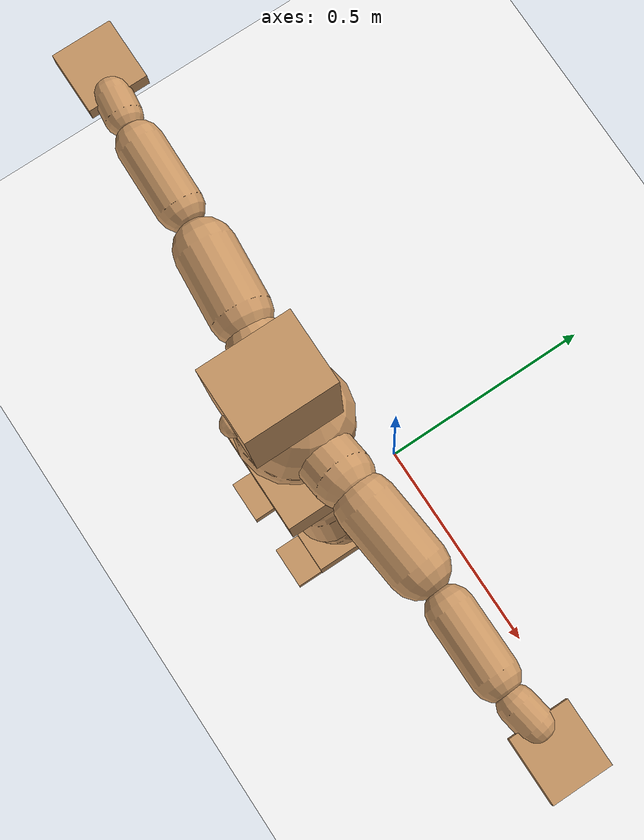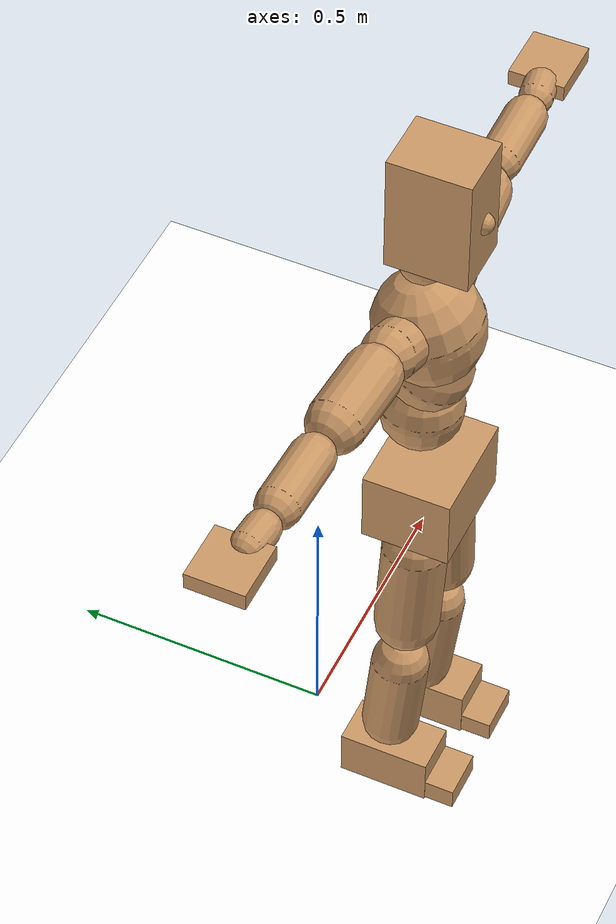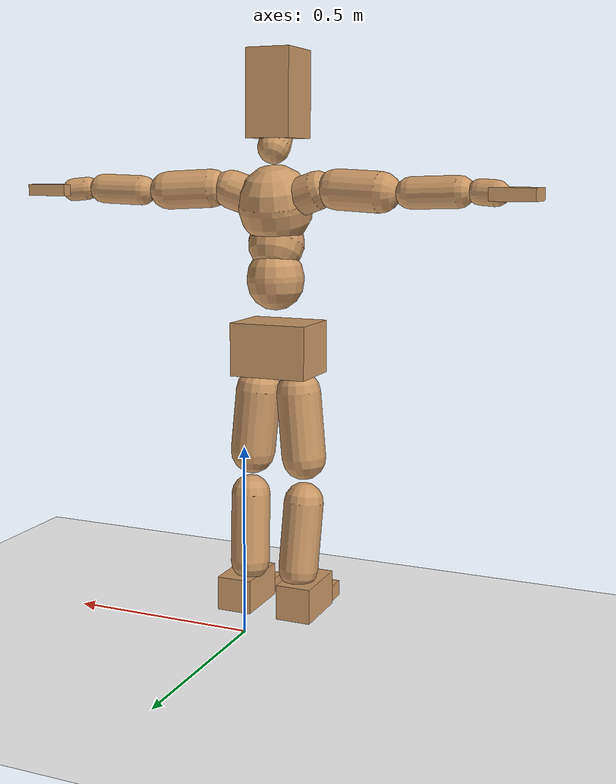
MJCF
<mujoco model="humanoid">
  <option integrator="implicitfast" />

  <visual>
    <global offwidth="1280" offheight="960" />
    <headlight active="1" ambient="0.34 0.34 0.34" diffuse="0.5 0.5 0.5" />
  </visual>

  <default>
    <joint damping="2" stiffness="2" armature="0.01" limited="true" solimplimit="0 .99 .01" />
    <geom condim="1" friction="0.7 0.005 0.0001" solimp=".99 .99 .003" solref="0.015 1" margin="0.001" rgba="0.8 0.6 .4 1" />
    <default class="smplcontact">
      <geom condim="3" friction="1. 0.005 0.0001" solref="0.015 1" solimp="0.98 0.98 0.001" priority="1" />
    </default>
    <default class="stiff_medium">
      <joint stiffness="10" />
    </default>
    <default class="stiff_medium_higher">
      <joint stiffness="50" />
    </default>
    <default class="stiff_high">
      <joint stiffness="100" />
    </default>
  </default>

  <asset>
    <texture type="skybox" builtin="gradient" rgb1="0.99 0.99 0.99" rgb2="0.608 0.828 0.892" width="100" />
    <texture builtin="flat" height="1278" mark="cross" markrgb="1 1 1" name="texgeom" random="0.01" rgb1="0.8 0.6 0.4" rgb2="0.8 0.6 0.4" type="cube" width="127" />
    <texture name="texplane" type="2d" builtin="checker" markrgb="1 1 1" rgb1="0.756 0.772 0.76" rgb2="0.6 0.6 0.6" width="100" height="100" />
    <material name="MatPlane" reflectance="0.5" texture="texplane" texrepeat="1 1" texuniform="true" />
    <material name="geom" texture="texgeom" texuniform="true" />
  </asset>

  <worldbody>
    <light name="tracking_light" pos="0 0 7" dir="0 0 -1" directional="true" cutoff="100" exponent="1" diffuse="1 1 1" specular="0.1 0.1 0.1" mode="trackcom" />
    <camera name="back" pos="0 3 2.4" xyaxes="-1 0 0 0 -1 2" mode="trackcom" />
    <camera name="side" pos="-3 0 2.4" xyaxes="0 -1 0 1 0 2" mode="trackcom" />
    <camera name="front_side" pos="-2.8 -2.8 0.8" xyaxes="0.5 -0.5 0 0.1 0.1 1" mode="trackcom" />
    <geom condim="3" name="floor" pos="0 0 0" rgba="1 1 1 1" size="100 100 .2" type="plane" material="MatPlane" />
    <body name="Pelvis" pos="-0.0018 -0.2233 0.742209" euler="90 0 0">
      <site name="Pelvis" size="0.01" />
      <freejoint name="Pelvis" />
      <geom type="box" pos="-0.0000 -0.0121 -0.0055" size="0.1069 0.0722 0.083" quat="1.0000 0.0000 0.0000 0.0000" density="3165.830099" name="Pelvis" />
      <body name="L_Hip" pos="0.0542934 -0.0714017 -0.00531216">
        <joint name="L_Hip_x" type="hinge" pos="0 0 0" axis="1 0 0" stiffness="6.668919081632653" range="-160.0 22.92" class="stiff_medium" damping="9.005392758035596" armature="0.005404647222188625"/>
        <joint name="L_Hip_y" type="hinge" pos="0 0 0" axis="0 1 0" stiffness="6.7029594897959175" range="-70.0 70.0" class="stiff_medium" damping="6.999485035701093" armature="0.007309128279767539"/>
        <joint name="L_Hip_z" type="hinge" pos="0 0 0" axis="0 0 1" stiffness="6.700045714285715" range="-28.65 90.0" class="stiff_medium" damping="6.015959840364452" armature="0.005401720278372198"/>
        <geom type="capsule" density="2040.816327" fromto="0.00539028 -0.05859 -0.00070308 0.0214049 -0.234516 -0.00281232" size="0.0615" name="L_Hip" />
        <body name="L_Knee" pos="0.0267952 -0.293106 -0.0035154">
          <joint name="L_Knee_x" type="hinge" pos="0 0 0" axis="1 0 0" range="-5.16 171.89" damping="4.994859330859699" armature="0.005679161253517449" stiffness="1.3728160408163266"/>
          <joint name="L_Knee_y" type="hinge" pos="0 0 0" axis="0 1 0" range="-4.58 6.88" damping="5.755474077414816" armature="0.007669894539457125" stiffness="1.3496552040816325"/>
          <joint name="L_Knee_z" type="hinge" pos="0 0 0" axis="0 0 1" range="-6.88 4.58" damping="5.006769984553142" armature="0.0056641260064769616" stiffness="1.3830325306122448"/>
          <geom type="capsule" density="1234.567901" fromto="-0.00210924 -0.0621835 -0.00679644 -0.00851508 -0.248734 -0.027342" size="0.0541" name="L_Knee" />
          <body name="L_Ankle" pos="-0.0106243 -0.310918 -0.0341384">
            <joint name="L_Ankle_x" type="hinge" pos="0 0 0" axis="1 0 0" range="-45.84 45.84" class="stiff_medium" damping="4.573210767116829" armature="0.0074366579588940876" stiffness="7.8119980612244895"/>
            <joint name="L_Ankle_y" type="hinge" pos="0 0 0" axis="0 1 0" range="-74.48 22.92" class="stiff_medium" damping="2.30121953012551" armature="0.007532019435998697" stiffness="7.811998673469388"/>
            <joint name="L_Ankle_z" type="hinge" pos="0 0 0" axis="0 0 1" range="-4.58 4.58" class="stiff_medium" damping="4.789382259657415" armature="0.008156317644594216" stiffness="7.812002448979591"/>
            <geom type="box" pos="0.018202 -0.0186707 0.018905" size="0.0483 0.0464 0.085" quat="1.0000 0.0000 0.0000 0.0000" density="449.071558" name="L_Ankle" class="smplcontact" />
            <body name="L_Toe" pos="0.0206237 -0.043591 0.0931972">
              <joint name="L_Toe_x" type="hinge" pos="0 0 0" axis="1 0 0" range="-91.67 22.92" armature="0.00851830685370563" damping="1.6315025148950082" stiffness="1.5623999591836735"/>
              <joint name="L_Toe_y" type="hinge" pos="0 0 0" axis="0 1 0" range="-4.58 4.58" armature="0.008956027622512651" damping="1.672895470612629" stiffness="1.5623998571428572"/>
              <joint name="L_Toe_z" type="hinge" pos="0 0 0" axis="0 0 1" range="-4.58 4.58" armature="0.009841075256289923" damping="1.7536074806197295" stiffness="1.5623999999999998"/>
              <geom type="box" pos="-0.0023436 0.0042966 0.0193738" size="0.0478 0.02 0.0496" quat="1.0000 0.0000 0.0000 0.0000" density="423.206892" name="L_Toe" class="smplcontact" />
            </body>
          </body>
        </body>
      </body>
      <body name="R_Hip" pos="-0.0528872 -0.0706986 -0.00335916">
        <joint name="R_Hip_x" type="hinge" pos="0 0 0" axis="1 0 0" stiffness="6.668919081632653" range="-160.0 22.92" class="stiff_medium" damping="9.005392758035596" armature="0.005404647222188625"/>
        <joint name="R_Hip_y" type="hinge" pos="0 0 0" axis="0 1 0" stiffness="6.7029594897959175" range="-70.0 70.0" class="stiff_medium" damping="6.999485035701093" armature="0.007309128279767539"/>
        <joint name="R_Hip_z" type="hinge" pos="0 0 0" axis="0 0 1" stiffness="6.700045714285715" range="-90.0 28.65" class="stiff_medium" damping="6.015959840364452" armature="0.005401720278372198"/>
        <geom type="capsule" density="2040.816327" fromto="-0.00601524 -0.0597618 -0.00140616 -0.0239047 -0.239125 -0.00554652" size="0.0606" name="R_Hip" />
        <body name="R_Knee" pos="-0.02992 -0.298887 -0.00695268">
          <joint name="R_Knee_x" type="hinge" pos="0 0 0" axis="1 0 0" range="-5.16 171.89" damping="4.994859330859699" armature="0.005679161253517449" stiffness="1.3728160408163266"/>
          <joint name="R_Knee_y" type="hinge" pos="0 0 0" axis="0 1 0" range="-6.88 4.58" damping="5.755474077414816" armature="0.007669894539457125" stiffness="1.3496552040816325"/>
          <joint name="R_Knee_z" type="hinge" pos="0 0 0" axis="0 0 1" range="-4.58 6.88" damping="5.006769984553142" armature="0.0056641260064769616" stiffness="1.3830325306122448"/>
          <geom type="capsule" density="1234.567901" fromto="0.00249984 -0.0622616 -0.0066402 0.00984312 -0.248968 -0.0264046" size="0.0541" name="R_Knee" />
          <body name="R_Ankle" pos="0.012343 -0.31123 -0.0330448">
            <joint name="R_Ankle_x" type="hinge" pos="0 0 0" axis="1 0 0" range="-45.84 45.84" class="stiff_medium" damping="4.573210767116829" armature="0.0074366579588940876" stiffness="7.8119980612244895"/>
            <joint name="R_Ankle_y" type="hinge" pos="0 0 0" axis="0 1 0" range="-22.92 74.48" class="stiff_medium" damping="2.30121953012551" armature="0.007532019435998697" stiffness="7.811998673469388"/>
            <joint name="R_Ankle_z" type="hinge" pos="0 0 0" axis="0 0 1" range="-4.58 4.58" class="stiff_medium" damping="4.789382259657415" armature="0.008156317644594216" stiffness="7.812002448979591"/>
            <geom type="box" pos="-0.0165614 -0.0135929 0.0199987" size="0.0483 0.0478 0.0865" quat="1.0000 0.0000 0.0000 0.0000" density="434.700981" name="R_Ankle" class="smplcontact" />
            <body name="R_Toe" pos="-0.0198425 -0.0375757 0.096322">
              <joint name="R_Toe_x" type="hinge" pos="0 0 0" axis="1 0 0" range="-91.67 22.92" armature="0.00851830685370563" damping="1.6315025148950082" stiffness="1.5623999591836735"/>
              <joint name="R_Toe_y" type="hinge" pos="0 0 0" axis="0 1 0" range="-4.58 4.58" armature="0.008956027622512651" damping="1.672895470612629" stiffness="1.5623998571428572"/>
              <joint name="R_Toe_z" type="hinge" pos="0 0 0" axis="0 0 1" range="-4.58 4.58" armature="0.009841075256289923" damping="1.7536074806197295" stiffness="1.5623999999999998"/>
              <geom type="box" pos="0.00328104 0.0035154 0.0177332" size="0.0479 0.0216 0.0493" quat="1.0000 0.0000 0.0000 0.0000" density="407.384095" name="R_Toe" class="smplcontact" />
            </body>
          </body>
        </body>
      </body>
      <body name="Torso" pos="-0.0025 0.109 -0.0267">
        <joint name="Torso_x" type="hinge" pos="0 0 0" axis="1 0 0" range="-25.78 57.3" class="stiff_medium" damping="13.932006981780168" armature="0.009182714736939332" stiffness="9.394501836734692"/>
        <joint name="Torso_y" type="hinge" pos="0 0 0" axis="0 1 0" range="-57.3 57.3" class="stiff_high" damping="14.914052103601826" armature="0.0058674877481737706" stiffness="94.7718"/>
        <joint name="Torso_z" type="hinge" pos="0 0 0" axis="0 0 1" range="-34.38 34.38" class="stiff_high" damping="17.565394706208878" armature="0.008047935971323998" stiffness="95.84541063829786"/>
        <geom type="capsule" density="2040.816327" fromto="0.0025 0.0608 0.0005 0.003 0.0743 0.0006" size="0.0769" name="Torso" />
        <body name="Spine" pos="0.0055 0.1352 0.0011">
          <joint name="Spine_x" type="hinge" pos="0 0 0" axis="1 0 0" stiffness="9.281991428571429" range="-25.78 57.3" class="stiff_medium" damping="13.761244340916331" armature="0.009067586999224012"/>
          <joint name="Spine_y" type="hinge" pos="0 0 0" axis="0 1 0" stiffness="9.266892040816328" range="-57.3 57.3" class="stiff_high" damping="5.884465847715334" armature="0.005838482942894422"/>
          <joint name="Spine_z" type="hinge" pos="0 0 0" axis="0 0 1" stiffness="18.29689632653061" range="-34.38 34.38" class="stiff_high" damping="9.788519573263109" armature="0.007273176108229902"/>
          <geom type="capsule" density="2040.816327" fromto="0.0007 0.0238 0.0114 0.0008 0.0291 0.014" size="0.0755" name="Spine" />
          <body name="Chest" pos="0.0015 0.0529 0.0254">
            <joint name="Chest_x" type="hinge" pos="0 0 0" axis="1 0 0" stiffness="9.012631914893616" range="-25.78 57.3" class="stiff_medium" damping="13.51492232777067" armature="0.009007265321259696"/>
            <joint name="Chest_y" type="hinge" pos="0 0 0" axis="0 1 0" stiffness="8.1682425" range="-57.3 57.3" class="stiff_high" damping="5.519231547501825" armature="0.005827048488961094"/>
            <joint name="Chest_z" type="hinge" pos="0 0 0" axis="0 0 1" stiffness="18.29074510638298" range="-34.38 34.38" class="stiff_high" damping="9.557132668170919" armature="0.006935716541174649"/>
            <geom type="capsule" density="2040.816327" fromto="-0.0009 0.0682 -0.0173 -0.001 0.0833 -0.0212" size="0.1002" name="Chest" />
            <body name="Neck" pos="-0.0028 0.2139 -0.0429">
              <joint name="Neck_x" type="hinge" pos="0 0 0" axis="1 0 0" range="-28.65 57.3" class="stiff_medium_higher" damping="9.999999999999993" armature="0.009999999999999988" stiffness="50.0"/>
              <joint name="Neck_y" type="hinge" pos="0 0 0" axis="0 1 0" range="-40.11 40.11" class="stiff_medium_higher" damping="10.0" armature="0.01" stiffness="50.0"/>
              <joint name="Neck_z" type="hinge" pos="0 0 0" axis="0 0 1" range="-40.11 40.11" class="stiff_medium_higher" damping="9.99999999999999" armature="0.00999999999999998" stiffness="50.0"/>
              <geom type="capsule" density="1000" fromto="0.001 0.013 0.0103 0.0041 0.052 0.0411" size="0.0436" name="Neck" />
              <body name="Head" pos="0.0052 0.065 0.0513">
                <joint name="Head_x" type="hinge" pos="0 0 0" axis="1 0 0" range="-28.65 57.3" class="stiff_medium_higher" damping="1.9999999999999967" armature="0.009999999999999967" stiffness="50.0"/>
                <joint name="Head_y" type="hinge" pos="0 0 0" axis="0 1 0" range="-40.11 40.11" class="stiff_medium_higher" damping="2.0" armature="0.01" stiffness="50.0"/>
                <joint name="Head_z" type="hinge" pos="0 0 0" axis="0 0 1" range="-40.11 40.11" class="stiff_medium_higher" damping="1.999999999999995" armature="0.00999999999999995" stiffness="50.0"/>
                <geom type="box" pos="-0.0042 0.0876 -0.0116" size="0.0606 0.1154 0.076" quat="1.0000 0.0000 0.0000 0.0000" density="1018.069894" name="Head" />
                <geom type="capsule" name="nose" size="0.02 0.01" pos="0 0.07 0.05" quat="1 0 0 0" mass="0" contype="0" conaffinity="0" />
              </body>
            </body>
            <body name="L_Thorax" pos="0.06304 0.09736 -0.02728">
              <joint name="L_Thorax_x" type="hinge" pos="0 0 0" axis="1 0 0" range="-10.89 4.58" class="stiff_medium_higher" damping="14.07856699218771" armature="0.007053861815290381" stiffness="35.123676530612244"/>
              <joint name="L_Thorax_y" type="hinge" pos="0 0 0" axis="0 1 0" range="-28.65 17.19" class="stiff_medium_higher" damping="12.630523458795235" armature="0.005710576362720077" stiffness="34.91988214285715"/>
              <joint name="L_Thorax_z" type="hinge" pos="0 0 0" axis="0 0 1" range="-31.51 40.11" class="stiff_medium_higher" damping="12.62958403667273" armature="0.005709358298690341" stiffness="34.92213673469388"/>
              <geom type="capsule" density="1000" fromto="0.01456 0.00488 -0.00144 0.05824 0.01952 -0.00568" size="0.0521" name="L_Thorax" />
              <body name="L_Shoulder" pos="0.0728 0.0244 -0.00712">
                <joint name="L_Shoulder_x" type="hinge" pos="0 0 0" axis="1 0 0" range="-97.4 97.4" class="stiff_medium" damping="4.382238742763007" armature="0.007561531634546327" stiffness="7.054720204081633"/>
                <joint name="L_Shoulder_y" type="hinge" pos="0 0 0" axis="0 1 0" range="-108.86 80.21" class="stiff_medium" damping="3.806654825974682" armature="0.005750957655217402" stiffness="6.999134285714286"/>
                <joint name="L_Shoulder_z" type="hinge" pos="0 0 0" axis="0 0 1" range="-97.4 85.94" class="stiff_medium" damping="3.8069997513651854" armature="0.005749306699853241" stiffness="7.002412959183673"/>
                <geom type="capsule" density="1000" fromto="0.04152 -0.00208 -0.0044 0.16616 -0.00816 -0.0176" size="0.0517" name="L_Shoulder" />
                <body name="L_Elbow" pos="0.20768 -0.01024 -0.022">
                  <joint name="L_Elbow_x" type="hinge" pos="0 0 0" axis="1 0 0" range="-17.19 4.58" damping="3.8830386338158727" armature="0.0084110424974404" stiffness="1.434113693877551"/>
                  <joint name="L_Elbow_y" type="hinge" pos="0 0 0" axis="0 1 0" range="-180.0 17.19" damping="3.265154275669376" armature="0.00594941376070165" stiffness="1.4335842653061224"/>
                  <joint name="L_Elbow_z" type="hinge" pos="0 0 0" axis="0 0 1" range="-100.84 4.58" damping="3.2638000078874985" armature="0.005940746277076014" stiffness="1.4344851632653064"/>
                  <geom type="capsule" density="1000" fromto="0.03984 0.00144 -0.00016 0.15952 0.00576 -0.00072" size="0.0405" name="L_Elbow" />
                  <body name="L_Wrist" pos="0.19936 0.0072 -0.00096">
                    <joint name="L_Wrist_x" type="hinge" pos="0 0 0" axis="1 0 0" range="-180.0 22.92" armature="0.008745187524432508" damping="1.6422938071059379" stiffness="1.5420646734693877"/>
                    <joint name="L_Wrist_y" type="hinge" pos="0 0 0" axis="0 1 0" range="-17.19 17.19" armature="0.006692483268092773" damping="1.4327136289766877" stiffness="1.5335625510204083"/>
                    <joint name="L_Wrist_z" type="hinge" pos="0 0 0" axis="0 0 1" range="-22.92 22.92" armature="0.006575838574007044" damping="1.4217602196246946" stiffness="1.536991897959184"/>
                    <geom type="capsule" density="1000" fromto="0.01344 -0.00128 -0.0024 0.05376 -0.0052 -0.0096" size="0.0318" name="L_Wrist" class="smplcontact" />
                    <body name="L_Hand" pos="0.0672 -0.00656 -0.01192">
                      <joint name="L_Hand_x" type="hinge" pos="0 0 0" axis="1 0 0" range="-17.19 17.19" armature="0.009843161822125817" damping="1.7747709100276186" stiffness="1.5999999999999999"/>
                      <joint name="L_Hand_y" type="hinge" pos="0 0 0" axis="0 1 0" range="-51.57 51.57" armature="0.008103258620127252" damping="1.6102927555077433" stiffness="1.5999999999999999"/>
                      <joint name="L_Hand_z" type="hinge" pos="0 0 0" axis="0 0 1" range="-91.67 91.67" armature="0.007639463649195807" damping="1.5635307377031824" stiffness="1.5999999999999999"/>
                      <geom type="box" pos="0.03944 0.0008 -0.00464" size="0.0585 0.0158 0.0538" quat="1.0000 0.0000 0.0000 0.0000" density="400.552564" name="L_Hand" class="smplcontact" />
                    </body>
                  </body>
                </body>
              </body>
            </body>
            <body name="R_Thorax" pos="-0.06544 0.09504 -0.03088">
              <joint name="R_Thorax_x" type="hinge" pos="0 0 0" axis="1 0 0" range="-10.89 4.58" class="stiff_medium_higher" damping="14.07856699218771" armature="0.007053861815290381" stiffness="35.123676530612244"/>
              <joint name="R_Thorax_y" type="hinge" pos="0 0 0" axis="0 1 0" range="-17.19 28.65" class="stiff_medium_higher" damping="12.630523458795235" armature="0.005710576362720077" stiffness="34.91988214285715"/>
              <joint name="R_Thorax_z" type="hinge" pos="0 0 0" axis="0 0 1" range="-40.11 31.51" class="stiff_medium_higher" damping="12.62958403667273" armature="0.005709358298690341" stiffness="34.92213673469388"/>
              <geom type="capsule" density="1000" fromto="-0.01536 0.0052 -0.00144 -0.06144 0.0208 -0.00584" size="0.0511" name="R_Thorax" />
              <body name="R_Shoulder" pos="-0.0768 0.02608 -0.00728">
                <joint name="R_Shoulder_x" type="hinge" pos="0 0 0" axis="1 0 0" range="-97.4 97.4" class="stiff_medium" damping="4.382238742763007" armature="0.007561531634546327" stiffness="7.054720204081633"/>
                <joint name="R_Shoulder_y" type="hinge" pos="0 0 0" axis="0 1 0" range="-80.21 108.86" class="stiff_medium" damping="3.806654825974682" armature="0.005750957655217402" stiffness="6.999134285714286"/>
                <joint name="R_Shoulder_z" type="hinge" pos="0 0 0" axis="0 0 1" range="-85.94 97.4" class="stiff_medium" damping="3.8069997513651854" armature="0.005749306699853241" stiffness="7.002412959183673"/>
                <geom type="capsule" density="1000" fromto="-0.04056 -0.00216 -0.00344 -0.1624 -0.00856 -0.01368" size="0.0531" name="R_Shoulder" />
                <body name="R_Elbow" pos="-0.20296 -0.01064 -0.01712">
                  <joint name="R_Elbow_x" type="hinge" pos="0 0 0" axis="1 0 0" range="-17.19 4.58" damping="3.8830386338158727" armature="0.0084110424974404" stiffness="1.434113693877551"/>
                  <joint name="R_Elbow_y" type="hinge" pos="0 0 0" axis="0 1 0" range="-17.19 180.0" damping="3.265154275669376" armature="0.00594941376070165" stiffness="1.4335842653061224"/>
                  <joint name="R_Elbow_z" type="hinge" pos="0 0 0" axis="0 0 1" range="-4.58 100.84" damping="3.2638000078874985" armature="0.005940746277076014" stiffness="1.4344851632653064"/>
                  <geom type="capsule" density="1000" fromto="-0.04088 0.00128 -0.00088 -0.16336 0.00496 -0.00352" size="0.0408" name="R_Elbow" />
                  <body name="R_Wrist" pos="-0.20424 0.00624 -0.00448">
                    <joint name="R_Wrist_x" type="hinge" pos="0 0 0" axis="1 0 0" range="-180.0 22.92" armature="0.008745187524432508" damping="1.6422938071059379" stiffness="1.5420646734693877"/>
                    <joint name="R_Wrist_y" type="hinge" pos="0 0 0" axis="0 1 0" range="-17.19 17.19" armature="0.006692483268092773" damping="1.4327136289766877" stiffness="1.5335625510204083"/>
                    <joint name="R_Wrist_z" type="hinge" pos="0 0 0" axis="0 0 1" range="-22.92 22.92" armature="0.006575838574007044" damping="1.4217602196246946" stiffness="1.536991897959184"/>
                    <geom type="capsule" density="1000" fromto="-0.01352 -0.00096 -0.00168 -0.05416 -0.00392 -0.00664" size="0.0326" name="R_Wrist" class="smplcontact" />
                    <body name="R_Hand" pos="-0.06768 -0.00488 -0.00824">
                      <joint name="R_Hand_x" type="hinge" pos="0 0 0" axis="1 0 0" range="-17.19 17.19" armature="0.009843161822125817" damping="1.7747709100276186" stiffness="1.5999999999999999"/>
                      <joint name="R_Hand_y" type="hinge" pos="0 0 0" axis="0 1 0" range="-51.57 51.57" armature="0.008103258620127252" damping="1.6102927555077433" stiffness="1.5999999999999999"/>
                      <joint name="R_Hand_z" type="hinge" pos="0 0 0" axis="0 0 1" range="-91.67 91.67" armature="0.007639463649195807" damping="1.5635307377031824" stiffness="1.5999999999999999"/>
                      <geom type="box" pos="-0.03696 -0.00072 -0.00632" size="0.0569 0.0164 0.0546" quat="1.0000 0.0000 0.0000 0.0000" density="403.679611" name="R_Hand" class="smplcontact" />
                    </body>
                  </body>
                </body>
              </body>
            </body>
          </body>
        </body>
      </body>
    </body>
  </worldbody>
  <actuator>
    <general name="L_Hip_x" joint="L_Hip_x" biastype="affine" gainprm="191.61809471853672" biasprm="-143.59834038933423 -120.04054346938777 -1.200719034404746" ctrllimited="true" ctrlrange="-1 1" forcerange="-240.08108693877554 240.08108693877554" />
    <general name="L_Hip_y" joint="L_Hip_y" biastype="affine" gainprm="147.4057780331699" biasprm="0.0 -120.65327081632653 -1.3998970071402186" ctrllimited="true" ctrlrange="-1 1" forcerange="-241.30654163265305 241.30654163265305" />
    <general name="L_Hip_z" joint="L_Hip_z" biastype="affine" gainprm="124.87209139665137" biasprm="64.56723815579065 -120.60082285714287 -1.2031919680728904" ctrllimited="true" ctrlrange="-1 1" forcerange="-241.20164571428575 241.20164571428575" />
    <general name="L_Knee_x" joint="L_Knee_x" biastype="affine" gainprm="190.89658425358377" biasprm="179.76948597910206 -123.55344367346939 -1.2487148327149247" ctrllimited="true" ctrlrange="-1 1" forcerange="-247.10688734693878 247.10688734693878" />
    <general name="L_Knee_y" joint="L_Knee_y" biastype="affine" gainprm="12.147791594073286" biasprm="2.4380384525627017 -121.46896836734693 -1.438868519353704" ctrllimited="true" ctrlrange="-1 1" forcerange="-242.93793673469386 242.93793673469386" />
    <general name="L_Knee_z" joint="L_Knee_z" biastype="affine" gainprm="12.448209660432024" biasprm="-2.4983317817620994 -124.47292775510203 -1.2516924961382856" ctrllimited="true" ctrlrange="-1 1" forcerange="-248.94585551020407 248.94585551020407" />
    <general name="L_Ankle_x" joint="L_Ankle_x" biastype="affine" gainprm="56.2505292279493" biasprm="0.0 -70.30798255102042 -1.5244035890389431" ctrllimited="true" ctrlrange="-1 1" forcerange="-140.61596510204083 140.61596510204083" />
    <general name="L_Ankle_y" joint="L_Ankle_y" biastype="affine" gainprm="59.760056459304" biasprm="-31.634789641085366 -70.30798806122449 -1.5341463534170066" ctrllimited="true" ctrlrange="-1 1" forcerange="-140.61597612244898 140.61597612244898" />
    <general name="L_Ankle_z" joint="L_Ankle_z" biastype="affine" gainprm="5.620147656310603" biasprm="0.0 -70.30802204081633 -1.5964607532191384" ctrllimited="true" ctrlrange="-1 1" forcerange="-140.61604408163265 140.61604408163265" />
    <general name="L_Toe_x" joint="L_Toe_x" biastype="affine" gainprm="56.245633294431485" biasprm="-33.74541660696539 -56.24639853061225 -0.6526010059580033" ctrllimited="true" ctrlrange="-1 1" forcerange="-112.4927970612245 112.4927970612245" />
    <general name="L_Toe_y" joint="L_Toe_y" biastype="affine" gainprm="4.496116304463484" biasprm="0.0 -56.24639485714286 -0.6691581882450517" ctrllimited="true" ctrlrange="-1 1" forcerange="-112.49278971428572 112.49278971428572" />
    <general name="L_Toe_z" joint="L_Toe_z" biastype="affine" gainprm="4.496116715563322" biasprm="0.0 -56.246399999999994 -0.7014429922478919" ctrllimited="true" ctrlrange="-1 1" forcerange="-112.49279999999999 112.49279999999999" />
    <general name="R_Hip_x" joint="R_Hip_x" biastype="affine" gainprm="191.61809471853672" biasprm="-143.59834038933423 -120.04054346938777 -1.200719034404746" ctrllimited="true" ctrlrange="-1 1" forcerange="-240.08108693877554 240.08108693877554" />
    <general name="R_Hip_y" joint="R_Hip_y" biastype="affine" gainprm="147.4057780331699" biasprm="0.0 -120.65327081632653 -1.3998970071402186" ctrllimited="true" ctrlrange="-1 1" forcerange="-241.30654163265305 241.30654163265305" />
    <general name="R_Hip_z" joint="R_Hip_z" biastype="affine" gainprm="124.87209139665137" biasprm="-64.56723815579065 -120.60082285714287 -1.2031919680728904" ctrllimited="true" ctrlrange="-1 1" forcerange="-241.20164571428575 241.20164571428575" />
    <general name="R_Knee_x" joint="R_Knee_x" biastype="affine" gainprm="190.89658425358377" biasprm="179.76948597910206 -123.55344367346939 -1.2487148327149247" ctrllimited="true" ctrlrange="-1 1" forcerange="-247.10688734693878 247.10688734693878" />
    <general name="R_Knee_y" joint="R_Knee_y" biastype="affine" gainprm="12.147791594073286" biasprm="-2.4380384525627017 -121.46896836734693 -1.438868519353704" ctrllimited="true" ctrlrange="-1 1" forcerange="-242.93793673469386 242.93793673469386" />
    <general name="R_Knee_z" joint="R_Knee_z" biastype="affine" gainprm="12.448209660432024" biasprm="2.4983317817620994 -124.47292775510203 -1.2516924961382856" ctrllimited="true" ctrlrange="-1 1" forcerange="-248.94585551020407 248.94585551020407" />
    <general name="R_Ankle_x" joint="R_Ankle_x" biastype="affine" gainprm="56.2505292279493" biasprm="0.0 -70.30798255102042 -1.5244035890389431" ctrllimited="true" ctrlrange="-1 1" forcerange="-140.61596510204083 140.61596510204083" />
    <general name="R_Ankle_y" joint="R_Ankle_y" biastype="affine" gainprm="59.760056459304" biasprm="31.634789641085366 -70.30798806122449 -1.5341463534170066" ctrllimited="true" ctrlrange="-1 1" forcerange="-140.61597612244898 140.61597612244898" />
    <general name="R_Ankle_z" joint="R_Ankle_z" biastype="affine" gainprm="5.620147656310603" biasprm="0.0 -70.30802204081633 -1.5964607532191384" ctrllimited="true" ctrlrange="-1 1" forcerange="-140.61604408163265 140.61604408163265" />
    <general name="R_Toe_x" joint="R_Toe_x" biastype="affine" gainprm="56.245633294431485" biasprm="-33.74541660696539 -56.24639853061225 -0.6526010059580033" ctrllimited="true" ctrlrange="-1 1" forcerange="-112.4927970612245 112.4927970612245" />
    <general name="R_Toe_y" joint="R_Toe_y" biastype="affine" gainprm="4.496116304463484" biasprm="0.0 -56.24639485714286 -0.6691581882450517" ctrllimited="true" ctrlrange="-1 1" forcerange="-112.49278971428572 112.49278971428572" />
    <general name="R_Toe_z" joint="R_Toe_z" biastype="affine" gainprm="4.496116715563322" biasprm="0.0 -56.246399999999994 -0.7014429922478919" ctrllimited="true" ctrlrange="-1 1" forcerange="-112.49279999999999 112.49279999999999" />
    <general name="Torso_x" joint="Torso_x" biastype="affine" gainprm="163.4665350702227" biasprm="62.01811730155776 -225.46804408163263 -3.715201861808045" ctrllimited="true" ctrlrange="-1 1" forcerange="-338.2020661224489 338.2020661224489" />
    <general name="Torso_y" joint="Torso_y" biastype="affine" gainprm="227.4690744546756" biasprm="0.0 -227.45232 -2.982810420720365" ctrllimited="true" ctrlrange="-1 1" forcerange="-341.17848 341.17848" />
    <general name="Torso_z" joint="Torso_z" biastype="affine" gainprm="138.02755787241736" biasprm="0.0 -230.02898553191488 -3.5130789412417753" ctrllimited="true" ctrlrange="-1 1" forcerange="-345.0434782978723 345.0434782978723" />
    <general name="Spine_x" joint="Spine_x" biastype="affine" gainprm="161.5088275832893" biasprm="61.2753760884121 -222.7677942857143 -3.6696651575776884" ctrllimited="true" ctrlrange="-1 1" forcerange="-334.15169142857144 334.15169142857144" />
    <general name="Spine_y" joint="Spine_y" biastype="affine" gainprm="222.42179167177264" biasprm="0.0 -222.4054089795919 -2.942232923857667" ctrllimited="true" ctrlrange="-1 1" forcerange="-333.60811346938783 333.60811346938783" />
    <general name="Spine_z" joint="Spine_z" biastype="affine" gainprm="131.7473575300587" biasprm="0.0 -219.56275591836734 -3.2628398577543694" ctrllimited="true" ctrlrange="-1 1" forcerange="-329.34413387755103 329.34413387755103" />
    <general name="Chest_x" joint="Chest_x" biastype="affine" gainprm="156.82190887761192" biasprm="59.4971902722957 -216.3031659574468 -3.6039792874055117" ctrllimited="true" ctrlrange="-1 1" forcerange="-324.4547489361702 324.4547489361702" />
    <general name="Chest_y" joint="Chest_y" biastype="affine" gainprm="196.052260418853" biasprm="0.0 -196.03781999999998 -2.7596157737509124" ctrllimited="true" ctrlrange="-1 1" forcerange="-294.05672999999996 294.05672999999996" />
    <general name="Chest_z" joint="Chest_z" biastype="affine" gainprm="131.70306548262218" biasprm="0.0 -219.48894127659577 -3.185710889390306" ctrllimited="true" ctrlrange="-1 1" forcerange="-329.2334119148936 329.2334119148936" />
    <general name="Neck_x" joint="Neck_x" biastype="affine" gainprm="27.00198885760427" biasprm="9.000662952534757 -36.0 -0.7999999999999995" ctrllimited="true" ctrlrange="-1 1" forcerange="-72.0 72.0" />
    <general name="Neck_y" joint="Neck_y" biastype="affine" gainprm="25.20185626709732" biasprm="0.0 -36.0 -0.8" ctrllimited="true" ctrlrange="-1 1" forcerange="-72.0 72.0" />
    <general name="Neck_z" joint="Neck_z" biastype="affine" gainprm="25.20185626709732" biasprm="0.0 -36.0 -0.7999999999999993" ctrllimited="true" ctrlrange="-1 1" forcerange="-72.0 72.0" />
    <general name="Head_x" joint="Head_x" biastype="affine" gainprm="18.001325905069514" biasprm="6.000441968356505 -24.0 -0.7999999999999987" ctrllimited="true" ctrlrange="-1 1" forcerange="-48.0 48.0" />
    <general name="Head_y" joint="Head_y" biastype="affine" gainprm="16.801237511398213" biasprm="0.0 -24.0 -0.8" ctrllimited="true" ctrlrange="-1 1" forcerange="-48.0 48.0" />
    <general name="Head_z" joint="Head_z" biastype="affine" gainprm="16.801237511398213" biasprm="0.0 -24.0 -0.799999999999998" ctrllimited="true" ctrlrange="-1 1" forcerange="-48.0 48.0" />
    <general name="L_Thorax_x" joint="L_Thorax_x" biastype="affine" gainprm="11.380173839251224" biasprm="-4.641816220147075 -84.29682367346939 -1.1262853593750168" ctrllimited="true" ctrlrange="-1 1" forcerange="-168.59364734693878 168.59364734693878" />
    <general name="L_Thorax_y" joint="L_Thorax_y" biastype="affine" gainprm="33.52555621441006" biasprm="-8.381389053602515 -83.80771714285714 -1.010441876703619" ctrllimited="true" ctrlrange="-1 1" forcerange="-167.6154342857143 167.6154342857143" />
    <general name="L_Thorax_z" joint="L_Thorax_z" biastype="affine" gainprm="52.38340668427827" biasprm="6.2901046842333574 -83.8131281632653 -1.0103667229338185" ctrllimited="true" ctrlrange="-1 1" forcerange="-167.6262563265306 167.6262563265306" />
    <general name="L_Shoulder_x" joint="L_Shoulder_x" biastype="affine" gainprm="57.56484714653657" biasprm="0.0 -33.86265697959183 -1.1685969980701352" ctrllimited="true" ctrlrange="-1 1" forcerange="-67.72531395918367 67.72531395918367" />
    <general name="L_Shoulder_y" joint="L_Shoulder_y" biastype="affine" gainprm="55.43136324438747" biasprm="-8.399579822032585 -33.59584457142857 -1.0151079535932486" ctrllimited="true" ctrlrange="-1 1" forcerange="-67.19168914285714 67.19168914285714" />
    <general name="L_Shoulder_z" joint="L_Shoulder_z" biastype="affine" gainprm="53.77662660030028" biasprm="-3.3614058080039415 -33.61158220408163 -1.015199933697383" ctrllimited="true" ctrlrange="-1 1" forcerange="-67.22316440816326 67.22316440816326" />
    <general name="L_Elbow_x" joint="L_Elbow_x" biastype="affine" gainprm="9.808258075178859" biasprm="-5.681310717868877 -51.628092979591834 -0.6212861814105397" ctrllimited="true" ctrlrange="-1 1" forcerange="-103.25618595918367 103.25618595918367" />
    <general name="L_Elbow_y" joint="L_Elbow_y" biastype="affine" gainprm="88.80920560302397" biasprm="-73.3253550597309 -51.6090335510204 -0.5224246841071002" ctrllimited="true" ctrlrange="-1 1" forcerange="-103.2180671020408 103.2180671020408" />
    <general name="L_Elbow_z" joint="L_Elbow_z" biastype="affine" gainprm="47.50824038940244" biasprm="-43.380224055054825 -51.64146587755103 -0.5222080012619997" ctrllimited="true" ctrlrange="-1 1" forcerange="-103.28293175510206 103.28293175510206" />
    <general name="L_Wrist_x" joint="L_Wrist_x" biastype="affine" gainprm="16.384231065516452" biasprm="-12.683003231674178 -9.252388040816326 -0.6569175228423751" ctrllimited="true" ctrlrange="-1 1" forcerange="-18.504776081632652 18.504776081632652" />
    <general name="L_Wrist_y" joint="L_Wrist_y" biastype="affine" gainprm="2.7606159276728173" biasprm="0.0 -9.20137530612245 -0.5730854515906751" ctrllimited="true" ctrlrange="-1 1" forcerange="-18.4027506122449 18.4027506122449" />
    <general name="L_Wrist_z" joint="L_Wrist_z" biastype="affine" gainprm="3.689052275815283" biasprm="0.0 -9.221951387755103 -0.5687040878498778" ctrllimited="true" ctrlrange="-1 1" forcerange="-18.443902775510207 18.443902775510207" />
    <general name="L_Hand_x" joint="L_Hand_x" biastype="affine" gainprm="2.880212144811123" biasprm="0.0 -9.6 -0.7099083640110475" ctrllimited="true" ctrlrange="-1 1" forcerange="-19.2 19.2" />
    <general name="L_Hand_y" joint="L_Hand_y" biastype="affine" gainprm="8.640636434433366" biasprm="0.0 -9.6 -0.6441171022030974" ctrllimited="true" ctrlrange="-1 1" forcerange="-19.2 19.2" />
    <general name="L_Hand_z" joint="L_Hand_z" biastype="affine" gainprm="15.359455922910737" biasprm="0.0 -9.6 -0.625412295081273" ctrllimited="true" ctrlrange="-1 1" forcerange="-19.2 19.2" />
    <general name="R_Thorax_x" joint="R_Thorax_x" biastype="affine" gainprm="11.380173839251224" biasprm="-4.641816220147075 -84.29682367346939 -1.1262853593750168" ctrllimited="true" ctrlrange="-1 1" forcerange="-168.59364734693878 168.59364734693878" />
    <general name="R_Thorax_y" joint="R_Thorax_y" biastype="affine" gainprm="33.52555621441006" biasprm="8.381389053602511 -83.80771714285714 -1.010441876703619" ctrllimited="true" ctrlrange="-1 1" forcerange="-167.6154342857143 167.6154342857143" />
    <general name="R_Thorax_z" joint="R_Thorax_z" biastype="affine" gainprm="52.38340668427827" biasprm="-6.2901046842333574 -83.8131281632653 -1.0103667229338185" ctrllimited="true" ctrlrange="-1 1" forcerange="-167.6262563265306 167.6262563265306" />
    <general name="R_Shoulder_x" joint="R_Shoulder_x" biastype="affine" gainprm="57.56484714653657" biasprm="0.0 -33.86265697959183 -1.1685969980701352" ctrllimited="true" ctrlrange="-1 1" forcerange="-67.72531395918367 67.72531395918367" />
    <general name="R_Shoulder_y" joint="R_Shoulder_y" biastype="affine" gainprm="55.43136324438747" biasprm="8.399579822032585 -33.59584457142857 -1.0151079535932486" ctrllimited="true" ctrlrange="-1 1" forcerange="-67.19168914285714 67.19168914285714" />
    <general name="R_Shoulder_z" joint="R_Shoulder_z" biastype="affine" gainprm="53.77662660030028" biasprm="3.361405808003934 -33.61158220408163 -1.015199933697383" ctrllimited="true" ctrlrange="-1 1" forcerange="-67.22316440816326 67.22316440816326" />
    <general name="R_Elbow_x" joint="R_Elbow_x" biastype="affine" gainprm="9.808258075178859" biasprm="-5.681310717868877 -51.628092979591834 -0.6212861814105397" ctrllimited="true" ctrlrange="-1 1" forcerange="-103.25618595918367 103.25618595918367" />
    <general name="R_Elbow_y" joint="R_Elbow_y" biastype="affine" gainprm="88.80920560302397" biasprm="73.3253550597309 -51.6090335510204 -0.5224246841071002" ctrllimited="true" ctrlrange="-1 1" forcerange="-103.2180671020408 103.2180671020408" />
    <general name="R_Elbow_z" joint="R_Elbow_z" biastype="affine" gainprm="47.50824038940244" biasprm="43.38022405505482 -51.64146587755103 -0.5222080012619997" ctrllimited="true" ctrlrange="-1 1" forcerange="-103.28293175510206 103.28293175510206" />
    <general name="R_Wrist_x" joint="R_Wrist_x" biastype="affine" gainprm="16.384231065516452" biasprm="-12.683003231674178 -9.252388040816326 -0.6569175228423751" ctrllimited="true" ctrlrange="-1 1" forcerange="-18.504776081632652 18.504776081632652" />
    <general name="R_Wrist_y" joint="R_Wrist_y" biastype="affine" gainprm="2.7606159276728173" biasprm="0.0 -9.20137530612245 -0.5730854515906751" ctrllimited="true" ctrlrange="-1 1" forcerange="-18.4027506122449 18.4027506122449" />
    <general name="R_Wrist_z" joint="R_Wrist_z" biastype="affine" gainprm="3.689052275815283" biasprm="0.0 -9.221951387755103 -0.5687040878498778" ctrllimited="true" ctrlrange="-1 1" forcerange="-18.443902775510207 18.443902775510207" />
    <general name="R_Hand_x" joint="R_Hand_x" biastype="affine" gainprm="2.880212144811123" biasprm="0.0 -9.6 -0.7099083640110475" ctrllimited="true" ctrlrange="-1 1" forcerange="-19.2 19.2" />
    <general name="R_Hand_y" joint="R_Hand_y" biastype="affine" gainprm="8.640636434433366" biasprm="0.0 -9.6 -0.6441171022030974" ctrllimited="true" ctrlrange="-1 1" forcerange="-19.2 19.2" />
    <general name="R_Hand_z" joint="R_Hand_z" biastype="affine" gainprm="15.359455922910737" biasprm="0.0 -9.6 -0.625412295081273" ctrllimited="true" ctrlrange="-1 1" forcerange="-19.2 19.2" />
  </actuator>
  <contact>
    <exclude body1="Torso" body2="Chest" />
    <exclude body1="Head" body2="Chest" />
    <exclude body1="R_Knee" body2="R_Toe" />
    <exclude body1="R_Knee" body2="L_Ankle" />
    <exclude body1="R_Knee" body2="L_Toe" />
    <exclude body1="L_Knee" body2="L_Toe" />
    <exclude body1="L_Knee" body2="R_Ankle" />
    <exclude body1="L_Knee" body2="R_Toe" />
    <exclude body1="L_Shoulder" body2="Chest" />
    <exclude body1="R_Shoulder" body2="Chest" />
  </contact>
  <sensor>
    <framelinvel name="sensor_Pelvis_framelinvel" objtype="xbody" objname="Pelvis" />
    <framelinvel name="sensor_L_Hip_framelinvel" objtype="xbody" objname="L_Hip" />
    <framelinvel name="sensor_L_Knee_framelinvel" objtype="xbody" objname="L_Knee" />
    <framelinvel name="sensor_L_Ankle_framelinvel" objtype="xbody" objname="L_Ankle" />
    <framelinvel name="sensor_L_Toe_framelinvel" objtype="xbody" objname="L_Toe" />
    <framelinvel name="sensor_R_Hip_framelinvel" objtype="xbody" objname="R_Hip" />
    <framelinvel name="sensor_R_Knee_framelinvel" objtype="xbody" objname="R_Knee" />
    <framelinvel name="sensor_R_Ankle_framelinvel" objtype="xbody" objname="R_Ankle" />
    <framelinvel name="sensor_R_Toe_framelinvel" objtype="xbody" objname="R_Toe" />
    <framelinvel name="sensor_Torso_framelinvel" objtype="xbody" objname="Torso" />
    <framelinvel name="sensor_Spine_framelinvel" objtype="xbody" objname="Spine" />
    <framelinvel name="sensor_Chest_framelinvel" objtype="xbody" objname="Chest" />
    <framelinvel name="sensor_Neck_framelinvel" objtype="xbody" objname="Neck" />
    <framelinvel name="sensor_Head_framelinvel" objtype="xbody" objname="Head" />
    <framelinvel name="sensor_L_Thorax_framelinvel" objtype="xbody" objname="L_Thorax" />
    <framelinvel name="sensor_L_Shoulder_framelinvel" objtype="xbody" objname="L_Shoulder" />
    <framelinvel name="sensor_L_Elbow_framelinvel" objtype="xbody" objname="L_Elbow" />
    <framelinvel name="sensor_L_Wrist_framelinvel" objtype="xbody" objname="L_Wrist" />
    <framelinvel name="sensor_L_Hand_framelinvel" objtype="xbody" objname="L_Hand" />
    <framelinvel name="sensor_R_Thorax_framelinvel" objtype="xbody" objname="R_Thorax" />
    <framelinvel name="sensor_R_Shoulder_framelinvel" objtype="xbody" objname="R_Shoulder" />
    <framelinvel name="sensor_R_Elbow_framelinvel" objtype="xbody" objname="R_Elbow" />
    <framelinvel name="sensor_R_Wrist_framelinvel" objtype="xbody" objname="R_Wrist" />
    <framelinvel name="sensor_R_Hand_framelinvel" objtype="xbody" objname="R_Hand" />
    <frameangvel name="sensor_Pelvis_frameangvel" objtype="xbody" objname="Pelvis" />
    <frameangvel name="sensor_L_Hip_frameangvel" objtype="xbody" objname="L_Hip" />
    <frameangvel name="sensor_L_Knee_frameangvel" objtype="xbody" objname="L_Knee" />
    <frameangvel name="sensor_L_Ankle_frameangvel" objtype="xbody" objname="L_Ankle" />
    <frameangvel name="sensor_L_Toe_frameangvel" objtype="xbody" objname="L_Toe" />
    <frameangvel name="sensor_R_Hip_frameangvel" objtype="xbody" objname="R_Hip" />
    <frameangvel name="sensor_R_Knee_frameangvel" objtype="xbody" objname="R_Knee" />
    <frameangvel name="sensor_R_Ankle_frameangvel" objtype="xbody" objname="R_Ankle" />
    <frameangvel name="sensor_R_Toe_frameangvel" objtype="xbody" objname="R_Toe" />
    <frameangvel name="sensor_Torso_frameangvel" objtype="xbody" objname="Torso" />
    <frameangvel name="sensor_Spine_frameangvel" objtype="xbody" objname="Spine" />
    <frameangvel name="sensor_Chest_frameangvel" objtype="xbody" objname="Chest" />
    <frameangvel name="sensor_Neck_frameangvel" objtype="xbody" objname="Neck" />
    <frameangvel name="sensor_Head_frameangvel" objtype="xbody" objname="Head" />
    <frameangvel name="sensor_L_Thorax_frameangvel" objtype="xbody" objname="L_Thorax" />
    <frameangvel name="sensor_L_Shoulder_frameangvel" objtype="xbody" objname="L_Shoulder" />
    <frameangvel name="sensor_L_Elbow_frameangvel" objtype="xbody" objname="L_Elbow" />
    <frameangvel name="sensor_L_Wrist_frameangvel" objtype="xbody" objname="L_Wrist" />
    <frameangvel name="sensor_L_Hand_frameangvel" objtype="xbody" objname="L_Hand" />
    <frameangvel name="sensor_R_Thorax_frameangvel" objtype="xbody" objname="R_Thorax" />
    <frameangvel name="sensor_R_Shoulder_frameangvel" objtype="xbody" objname="R_Shoulder" />
    <frameangvel name="sensor_R_Elbow_frameangvel" objtype="xbody" objname="R_Elbow" />
    <frameangvel name="sensor_R_Wrist_frameangvel" objtype="xbody" objname="R_Wrist" />
    <frameangvel name="sensor_R_Hand_frameangvel" objtype="xbody" objname="R_Hand" />
    <subtreelinvel name="Chest_subtreelinvel" body="Chest" />
    <gyro name="Pelvis_gyro" site="Pelvis" />
  </sensor>
</mujoco>
